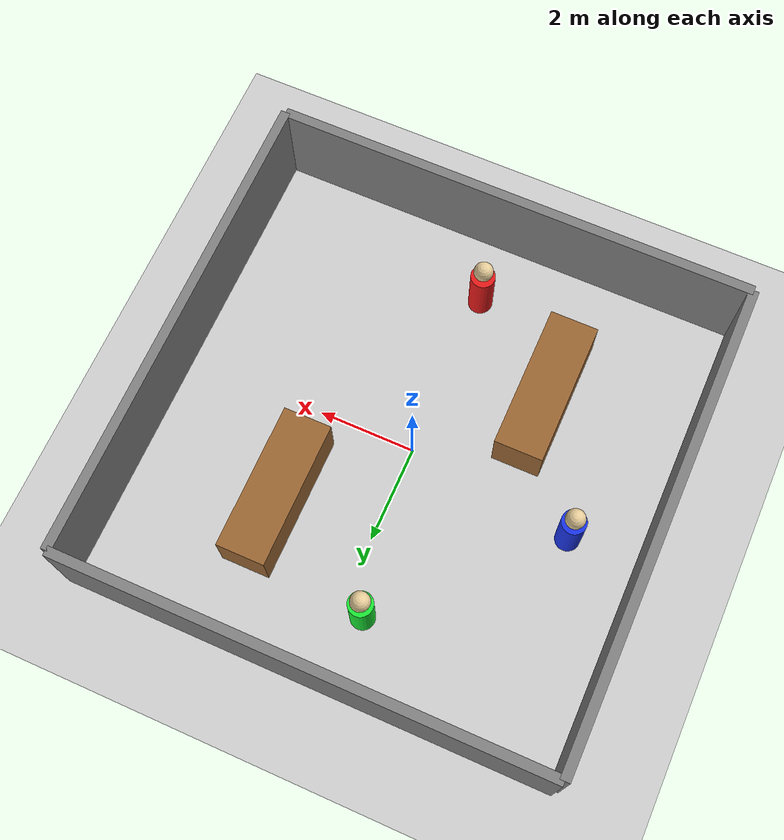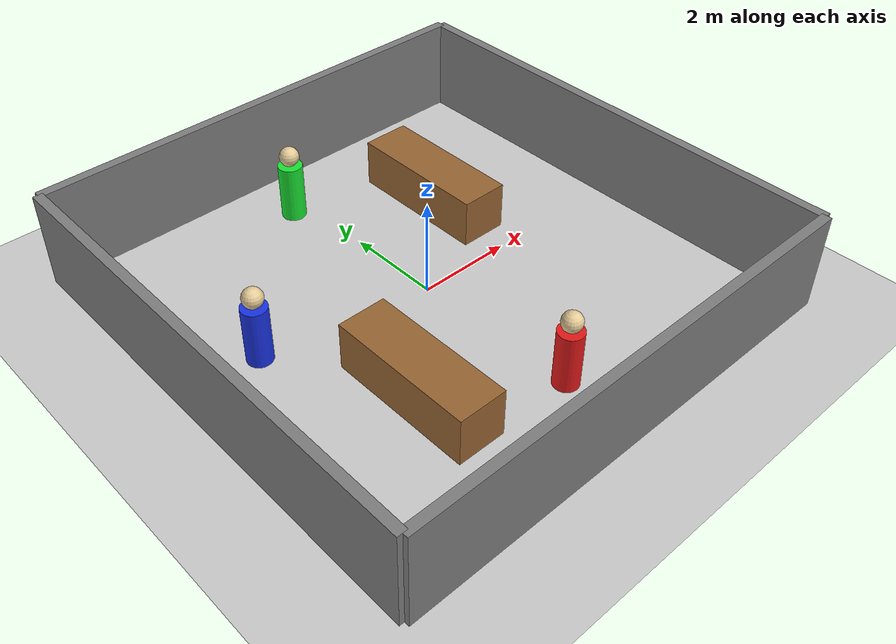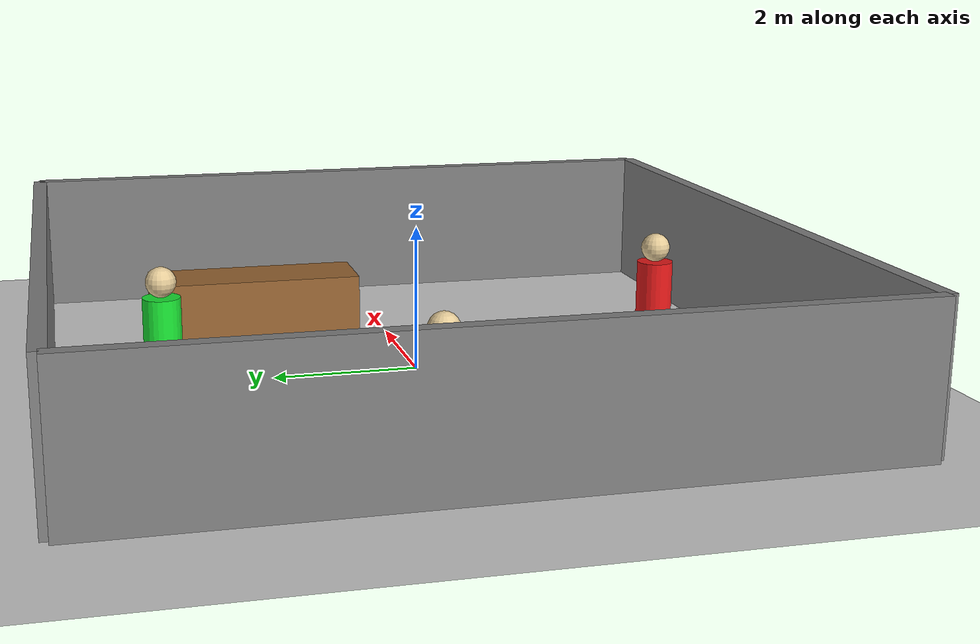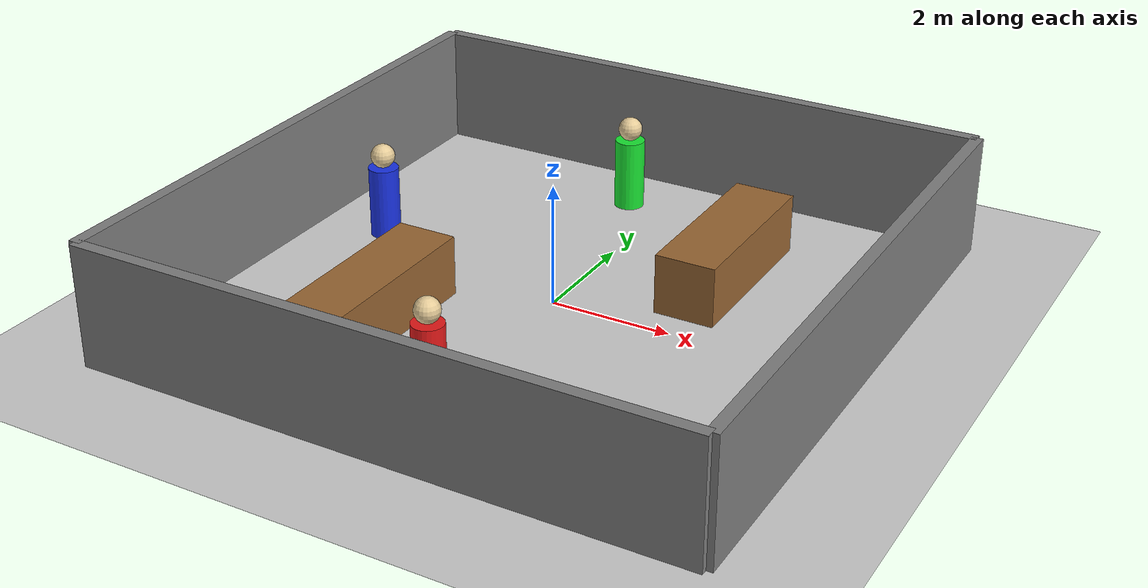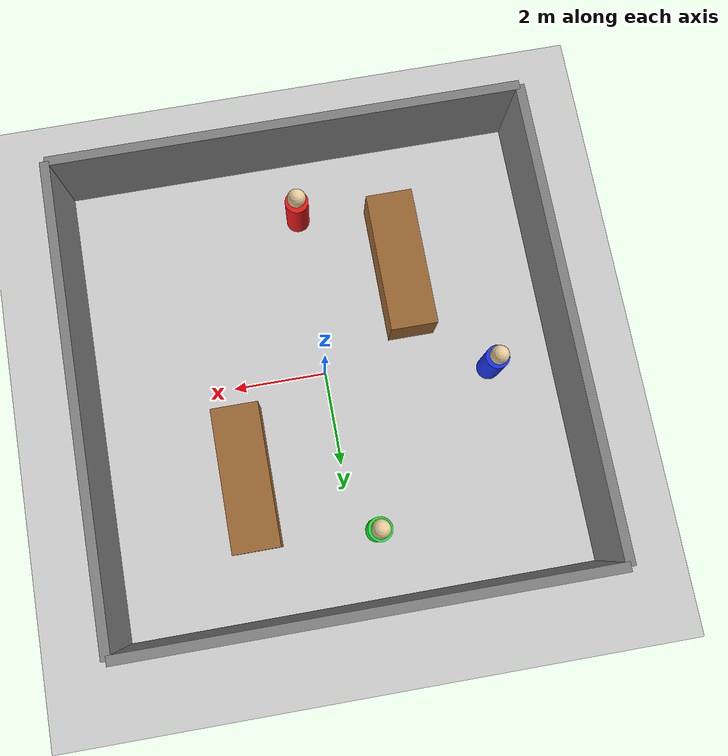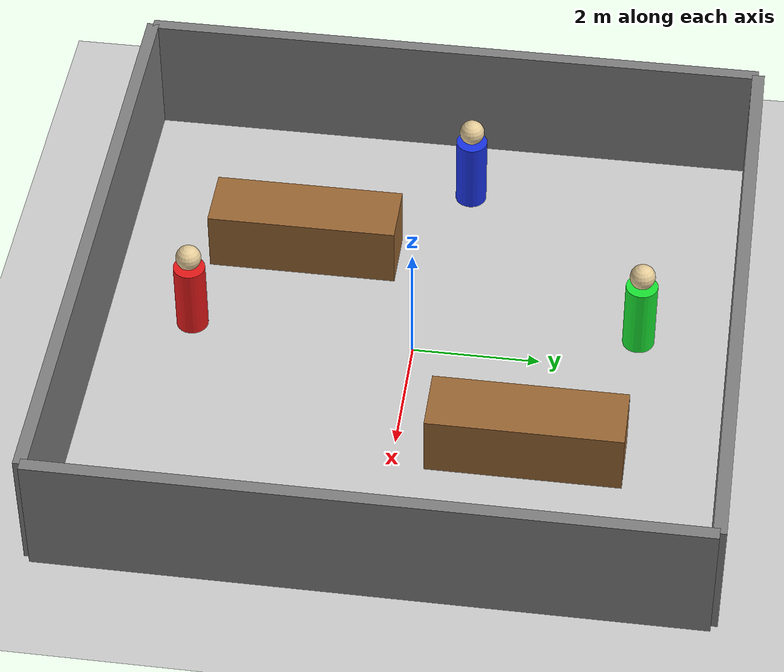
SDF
<?xml version="1.0" ?>
<sdf version="1.8">
  <world name="warehouse">
    <physics name="1ms" type="ignored">
      <max_step_size>0.001</max_step_size>
      <real_time_factor>1.0</real_time_factor>
    </physics>

    <plugin
      filename="gz-sim-physics-system"
      name="gz::sim::systems::Physics">
    </plugin>
    <plugin
      filename="gz-sim-user-commands-system"
      name="gz::sim::systems::UserCommands">
    </plugin>
    <plugin
      filename="gz-sim-scene-broadcaster-system"
      name="gz::sim::systems::SceneBroadcaster">
    </plugin>
    <plugin
      filename="gz-sim-sensors-system"
      name="gz::sim::systems::Sensors">
    </plugin>

    <light type="directional" name="sun">
      <cast_shadows>true</cast_shadows>
      <pose>0 0 10 0 0 0</pose>
      <diffuse>0.8 0.8 0.8 1</diffuse>
      <specular>0.2 0.2 0.2 1</specular>
      <attenuation>
        <range>1000</range>
        <constant>0.9</constant>
        <linear>0.01</linear>
        <quadratic>0.001</quadratic>
      </attenuation>
      <direction>-0.5 0.1 -0.9</direction>
    </light>

    <model name="ground_plane">
      <static>true</static>
      <link name="link">
        <collision name="collision">
          <geometry>
            <plane>
              <normal>0 0 1</normal>
              <size>100 100</size>
            </plane>
          </geometry>
        </collision>
        <visual name="visual">
          <geometry>
            <plane>
              <normal>0 0 1</normal>
              <size>100 100</size>
            </plane>
          </geometry>
          <material>
            <ambient>0.8 0.8 0.8 1</ambient>
            <diffuse>0.8 0.8 0.8 1</diffuse>
          </material>
        </visual>
      </link>
    </model>

    <!-- Walls -->
    <model name="wall_1">
      <static>true</static>
      <pose>0 5 1 0 0 0</pose>
      <link name="link">
        <collision name="col"><geometry><box><size>10 0.2 2</size></box></geometry></collision>
        <visual name="vis">
          <geometry><box><size>10 0.2 2</size></box></geometry>
          <material>
            <ambient>0.5 0.5 0.5 1</ambient>
            <diffuse>0.5 0.5 0.5 1</diffuse>
          </material>
        </visual>
      </link>
    </model>
    <model name="wall_2">
      <static>true</static>
      <pose>0 -5 1 0 0 0</pose>
      <link name="link">
        <collision name="col"><geometry><box><size>10 0.2 2</size></box></geometry></collision>
        <visual name="vis">
          <geometry><box><size>10 0.2 2</size></box></geometry>
          <material>
            <ambient>0.5 0.5 0.5 1</ambient>
            <diffuse>0.5 0.5 0.5 1</diffuse>
          </material>
        </visual>
      </link>
    </model>
    <model name="wall_3">
      <static>true</static>
      <pose>5 0 1 0 0 1.5708</pose>
      <link name="link">
        <collision name="col"><geometry><box><size>10 0.2 2</size></box></geometry></collision>
        <visual name="vis">
          <geometry><box><size>10 0.2 2</size></box></geometry>
          <material>
            <ambient>0.5 0.5 0.5 1</ambient>
            <diffuse>0.5 0.5 0.5 1</diffuse>
          </material>
        </visual>
      </link>
    </model>
    <model name="wall_4">
      <static>true</static>
      <pose>-5 0 1 0 0 1.5708</pose>
      <link name="link">
        <collision name="col"><geometry><box><size>10 0.2 2</size></box></geometry></collision>
        <visual name="vis">
          <geometry><box><size>10 0.2 2</size></box></geometry>
          <material>
            <ambient>0.5 0.5 0.5 1</ambient>
            <diffuse>0.5 0.5 0.5 1</diffuse>
          </material>
        </visual>
      </link>
    </model>

    <!-- Shelves (Static Obstacles) -->
    <model name="shelf_1">
      <static>true</static>
      <pose>2 2 0.5 0 0 0</pose>
      <link name="link">
        <collision name="col"><geometry><box><size>1 3 1</size></box></geometry></collision>
        <visual name="vis"><geometry><box><size>1 3 1</size></box></geometry>
          <material><ambient>0.6 0.4 0.2 1</ambient></material>
        </visual>
      </link>
    </model>

    <model name="shelf_2">
      <static>true</static>
      <pose>-2 -2 0.5 0 0 0</pose>
      <link name="link">
        <collision name="col"><geometry><box><size>1 3 1</size></box></geometry></collision>
        <visual name="vis"><geometry><box><size>1 3 1</size></box></geometry>
          <material><ambient>0.6 0.4 0.2 1</ambient></material>
        </visual>
      </link>
    </model>

    <!-- Dynamic Moving Character 1 (Red) -->
    <model name="person_1">
      <pose>0.0 -3.5 0.75 0 0 1.5708</pose>
      <link name="link">
        <inertial>
          <mass>50.0</mass>
          <inertia>
            <ixx>1.0</ixx><ixy>0.0</ixy><ixz>0.0</ixz>
            <iyy>1.0</iyy><iyz>0.0</iyz><izz>1.0</izz>
          </inertia>
        </inertial>
        <collision name="col">
          <geometry><cylinder><radius>0.25</radius><length>1.5</length></cylinder></geometry>
        </collision>
        <visual name="vis_body">
          <geometry><cylinder><radius>0.25</radius><length>1.2</length></cylinder></geometry>
          <material><ambient>0.9 0.1 0.1 1</ambient><diffuse>0.9 0.1 0.1 1</diffuse></material>
        </visual>
        <visual name="vis_head">
          <pose>0 0 0.8 0 0 0</pose>
          <geometry><sphere><radius>0.2</radius></sphere></geometry>
          <material><ambient>0.9 0.8 0.6 1</ambient><diffuse>0.9 0.8 0.6 1</diffuse></material>
        </visual>
      </link>
      <plugin filename="gz-sim-velocity-control-system" name="gz::sim::systems::VelocityControl">
        <link_name>link</link_name>
      </plugin>
    </model>

    <!-- Dynamic Moving Character 2 (Blue) -->
    <model name="person_2">
      <pose>-3.5 0.5 0.75 0 0 0</pose>
      <link name="link">
        <inertial>
          <mass>50.0</mass>
          <inertia>
            <ixx>1.0</ixx><ixy>0.0</ixy><ixz>0.0</ixz>
            <iyy>1.0</iyy><iyz>0.0</iyz><izz>1.0</izz>
          </inertia>
        </inertial>
        <collision name="col">
          <geometry><cylinder><radius>0.25</radius><length>1.5</length></cylinder></geometry>
        </collision>
        <visual name="vis_body">
          <geometry><cylinder><radius>0.25</radius><length>1.2</length></cylinder></geometry>
          <material><ambient>0.1 0.2 0.9 1</ambient><diffuse>0.1 0.2 0.9 1</diffuse></material>
        </visual>
        <visual name="vis_head">
          <pose>0 0 0.8 0 0 0</pose>
          <geometry><sphere><radius>0.2</radius></sphere></geometry>
          <material><ambient>0.9 0.8 0.6 1</ambient><diffuse>0.9 0.8 0.6 1</diffuse></material>
        </visual>
      </link>
      <plugin filename="gz-sim-velocity-control-system" name="gz::sim::systems::VelocityControl">
        <link_name>link</link_name>
      </plugin>
    </model>

    <!-- Dynamic Moving Character 3 (Green) -->
    <model name="person_3">
      <pose>-0.5 3.5 0.75 0 0 -1.5708</pose>
      <link name="link">
        <inertial>
          <mass>50.0</mass>
          <inertia>
            <ixx>1.0</ixx><ixy>0.0</ixy><ixz>0.0</ixz>
            <iyy>1.0</iyy><iyz>0.0</iyz><izz>1.0</izz>
          </inertia>
        </inertial>
        <collision name="col">
          <geometry><cylinder><radius>0.25</radius><length>1.5</length></cylinder></geometry>
        </collision>
        <visual name="vis_body">
          <geometry><cylinder><radius>0.25</radius><length>1.2</length></cylinder></geometry>
          <material><ambient>0.1 0.9 0.2 1</ambient><diffuse>0.1 0.9 0.2 1</diffuse></material>
        </visual>
        <visual name="vis_head">
          <pose>0 0 0.8 0 0 0</pose>
          <geometry><sphere><radius>0.2</radius></sphere></geometry>
          <material><ambient>0.9 0.8 0.6 1</ambient><diffuse>0.9 0.8 0.6 1</diffuse></material>
        </visual>
      </link>
      <plugin filename="gz-sim-velocity-control-system" name="gz::sim::systems::VelocityControl">
        <link_name>link</link_name>
      </plugin>
    </model>

  </world>
</sdf>
